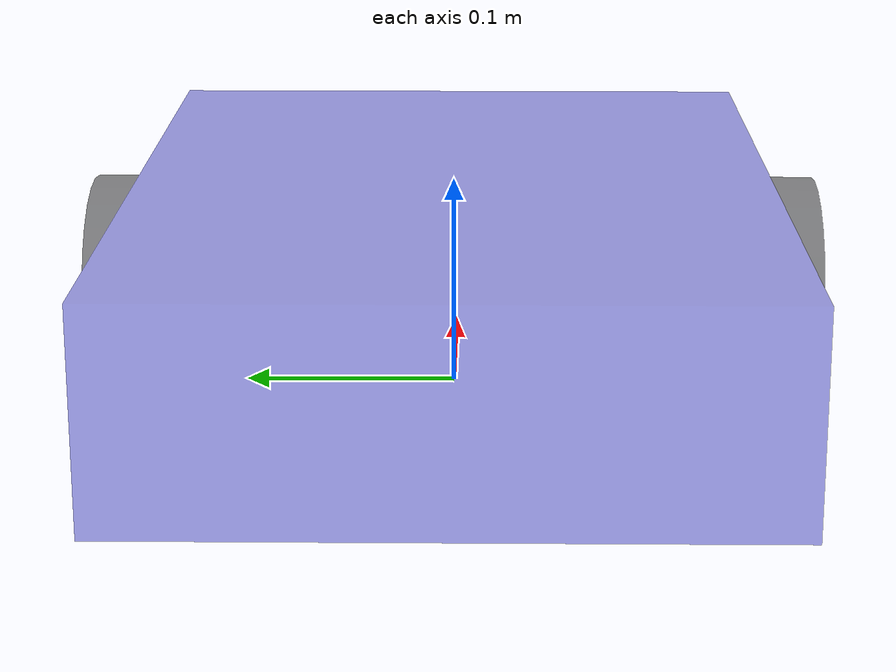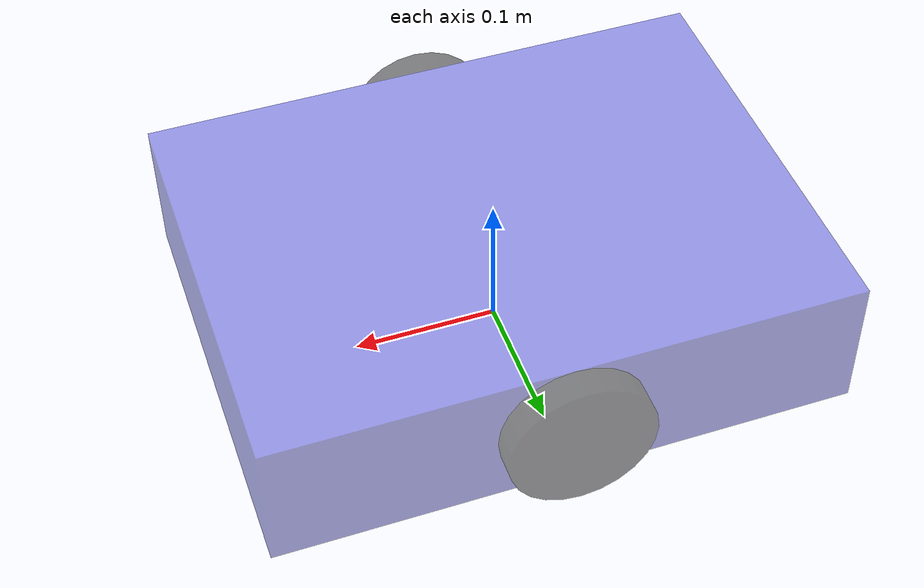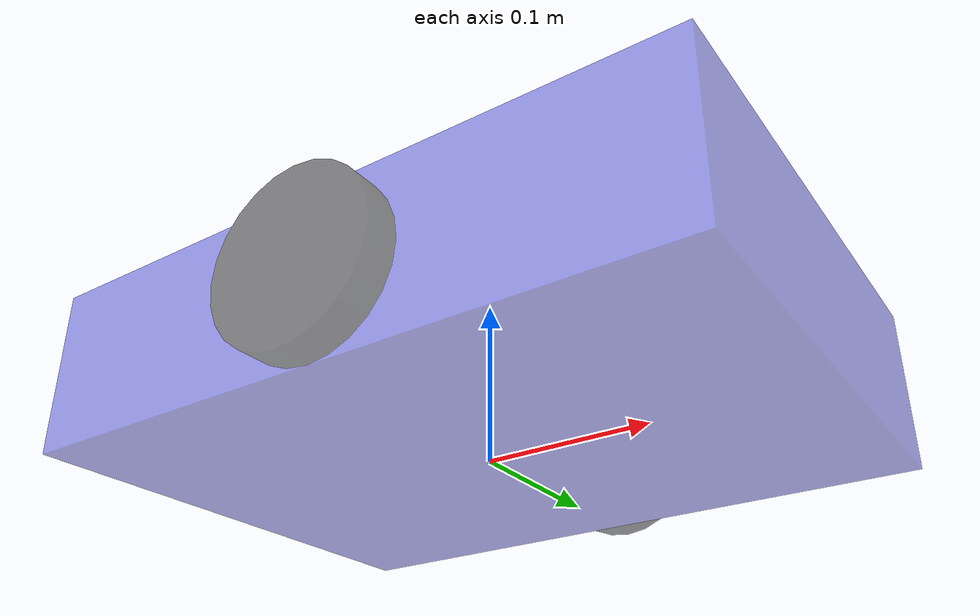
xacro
<?xml version="1.0"?>
<robot xmlns:xacro="https://www.ros.org/wiki/xacro" name="diffbot">
    <xacro:property name="base_w" value="0.4"/>
    <xacro:property name="base_d" value="0.3"/>
    <xacro:property name="base_h" value="0.1"/>
    <xacro:property name="wheel_r" value="0.05"/>
    <xacro:property name="wheel_t" value="0.02"/>

    <material name="gray">
        <color rgba="0.6 0.6 0.6 0.5"/>
    </material>
    <material name="black">
        <color rgba="0 0 0 0.5"/>
    </material>
    <material name="blue">
        <color rgba="0.2 0.2 0.8 0.5"/>
    </material>

    <xacro:macro name="wheel" params="name x y z">
        <link name="${name}">
            <visual>
                <geometry>
                    <cylinder radius="${wheel_r}" length="${wheel_t}"/>
                </geometry>
                <origin xyz="${x} ${y} ${z}" rpy="1.5708 0 0"/>
                <material name="black"/>
            </visual>

            <collision>
                <geometry>
                    <cylinder radius="${wheel_r}" length="${wheel_t}"/>
                </geometry>
                <origin xyz="${x} ${y} ${z}" rpy="1.5708 0 0"/>
            </collision>

            <inertial>
                <origin xyz="${x} ${y} ${z}" rpy="0 0 0"/>
                <mass value="0.5"/>
                <inertia ixx="0.001" iyy="0.001" izz="0.001" ixy="0" ixz="0" iyz="0"/>
            </inertial>
        </link>
    </xacro:macro>

    <link name="base_link">
        <visual>
            <geometry>
                <box size="${base_w} ${base_d} ${base_h}"/>
            </geometry>
            <origin xyz="0 0 ${base_h/2}" />
            <material name="blue"/>
        </visual>
        <collision>
            <geometry>
                <box size="${base_w} ${base_d} ${base_h}"/>
            </geometry>
            <origin xyz="0 0 ${base_h/2}" />
        </collision>
        <inertial>
            <origin xyz="0 0 ${base_h/2}" rpy="0 0 0"/>
            <mass value="5.0"/>
            <inertia ixx="0.1" iyy="0.1" izz="0.1" ixy="0" ixz="0" iyz="0"/>
        </inertial>
    </link>

    <xacro:wheel name="left_wheel" x="0" y="${wheel_t/2}" z="0"/>
    <xacro:wheel name="right_wheel" x="0" y="-${wheel_t/2}" z="0"/>

    <joint name="left_wheel-joint" type="continuous">
        <parent link= "base_link"/>
        <child link= "left_wheel"/>
        <origin xyz="0 0.15 0.05" rpy="0 0 0" />
        <axis xyz="0 1 0"/>
    </joint>
    <joint name="right_wheel_joint" type="continuous">
        <parent link= "base_link"/>
        <child link= "right_wheel"/>
        <origin xyz="0 -0.15 0.05" rpy="0 0 0" />
        <axis xyz="0 1 0"/>
    </joint>
</robot>
